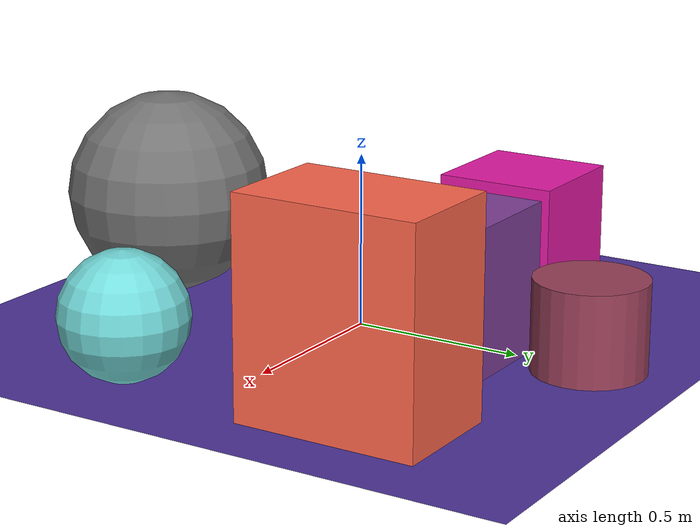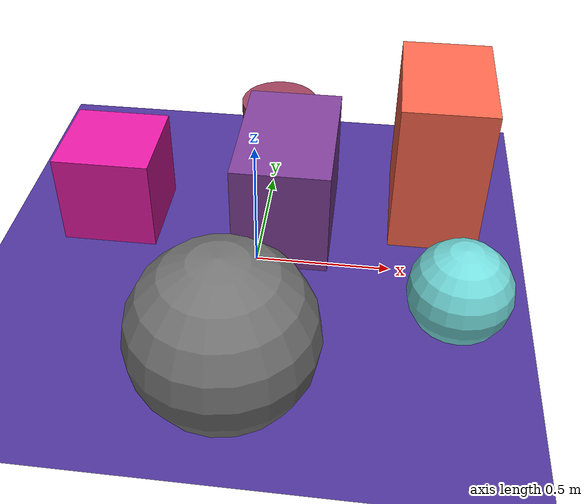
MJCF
<mujoco>
   <asset>
<texture type="skybox" builtin="gradient" rgb1="0.2 0.8 0.8" rgb2="0.4 0.4 0.8" width="256" height="256"/>
<texture name="gradient_0" builtin="gradient" rgb1="0.9 0.0 0.5" rgb2="0.3 0.5 0.2" width="200" height="200"/>
<texture name="checker_1" builtin="checker" type="2d" rgb1="1.0 0.3 0.8" rgb2="0.0 0.2 0.4" width="200" height="200"/>
<texture name="flat_2" builtin="flat" rgb1="1.0 0.4 0.3" rgb2="1.0 0.4 0.3"  width="200" height="200"/>
<texture name="gradient_3" builtin="gradient" rgb1="1.0 0.1 0.7" rgb2="0.8 0.1 0.6" width="200" height="200"/>
<texture name="checker_4" builtin="checker" type="2d" rgb1="0.1 0.3 0.3" rgb2="0.8 0.6 0.6" width="200" height="200"/>
<texture name="gradient_5" builtin="gradient" rgb1="0.3 0.8 0.8" rgb2="0.6 0.9 0.9" width="200" height="200"/><material name="gradient_0_mat" reflectance="0" texture="gradient_0" texuniform="true"/>
<material name="checker_1_mat" reflectance="0" texrepeat="7 7" texture="checker_1" texuniform="false" />
<material name="flat_2_mat" reflectance="0" texture="flat_2" texuniform="true"/>
<material name="gradient_3_mat" reflectance="0" texture="gradient_3" texuniform="true"/>
<material name="checker_4_mat" reflectance="0" texrepeat="5 5" texture="checker_4" texuniform="false" />
<material name="gradient_5_mat" reflectance="0" texture="gradient_5" texuniform="true"/>
   </asset>

   <worldbody>
      <light diffuse=".9 .9 .9" pos="0 0 3" dir="0 0 -1"/>
     <geom type="plane" size="1 1 0.1" rgba="0.3 0.2 0.6 1"/>
<geom type="cylinder" pos="-0.0 0.72 0.13" size="0.16 0.13 0.13" material="gradient_0_mat" />
<geom type="box" pos="0.09 0.24 0.21" size="0.18 0.28 0.21" material="checker_1_mat" />
<geom type="box" pos="0.66 0.4 0.3" size="0.17 0.26 0.3" material="flat_2_mat" />
<geom type="box" pos="-0.58 0.21 0.18" size="0.18 0.18 0.18" material="gradient_3_mat" />
<geom type="sphere" pos="-0.0 -0.68 0.3" size="0.3 0.3 0.3" material="checker_4_mat" />
<geom type="sphere" pos="0.73 -0.28 0.18" size="0.18 0.18 0.18" material="gradient_5_mat" /><camera euler="60 0 180" fovy="60" name="camera_a" pos="0 -1.5 1"></camera>   </worldbody>
</mujoco>
